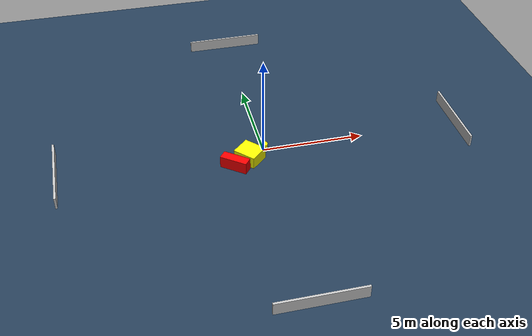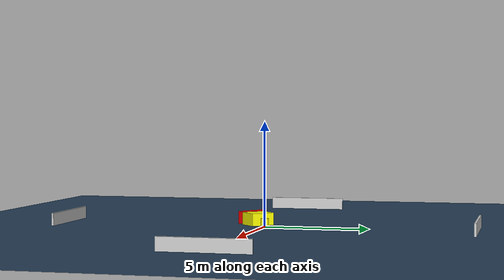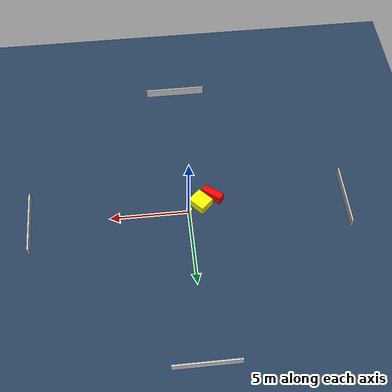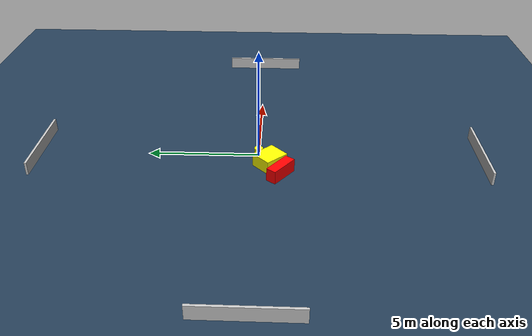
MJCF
<?xml version="1.0" ?>
<mujoco model="generated_environment">
  <option timestep="0.01" integrator="RK4" cone="elliptic"/>
  <default>
    <geom density="1"/>
  </default>
  <asset>
    <texture builtin="gradient" height="3072" name="skybox" rgb1="0.3 0.5 0.7" rgb2="0 0 0" type="skybox" width="512"/>
    <texture builtin="checker" height="300" name="groundplane" rgb1="0.2 0.3 0.4" rgb2="0.1 0.2 0.3" type="2d" width="300"/>
    <material name="groundplane" reflectance="0.2" texrepeat="5 5" texture="groundplane"/>
  </asset>
  <worldbody>
    <light dir="0 0 -1" directional="true" pos="0 0 1.5"/>
    <geom condim="3" friction="0.5 0.005 0.001" material="groundplane" name="floor" pos="0 0 0" size="0 0 0.05" type="plane"/>
    <body name="walls">
      <geom name="wall_1" condim="4" pos="-10.0 0.0 0.3" rgba="0.800000011920929 0.800000011920929 0.800000011920929 1.0" size="0.05 2.0 0.3" type="box"/>
      <geom name="wall_2" condim="4" pos="10.0 0.0 0.3" rgba="0.800000011920929 0.800000011920929 0.800000011920929 1.0" size="0.05 2.0 0.3" type="box"/>
      <geom name="wall_3" condim="4" pos="0.0 -10.0 0.3" rgba="0.800000011920929 0.800000011920929 0.800000011920929 1.0" size="2.0 0.05 0.3" type="box"/>
      <geom name="wall_4" condim="4" pos="0.0 10.0 0.3" rgba="0.800000011920929 0.800000011920929 0.800000011920929 1.0" size="2.0 0.05 0.3" type="box"/>
    </body>
    <body name="robot">
      <joint name="joint_x" type="slide" pos="0 0 0" axis="1 0 0"/>
      <joint name="joint_y" type="slide" pos="0 0 0" axis="0 1 0"/>
      <geom name="robot" type="cylinder" pos="0.0 0.0 0.2" size="0.2 0.2 0.0" mass="5.0" friction="1.0 0.005 0.0001" condim="4" rgba="1.0 1.0 0.0 1.0"/>
    </body>
    <body name="obstacle_1_movable">
      <geom name="obstacle_1_movable" condim="4" pos="-0.8024462115138812 -0.5239512663394121 0.3" euler="0 0 223.2083409920196" friction="0.0 0.005 0.001" rgba="1.0 1.0 0.0 1.0" size="0.5108448222975983 0.5755791931084839 0.3" type="box" mass="0.1"/>
      <joint type="free"/>
    </body>
    <body name="obstacle_2_static">
      <geom name="obstacle_2_static" condim="4" pos="-1.6184593744048204 -1.0055587016637764 0.3" euler="0 0 322.6494965054389" friction="0.0 0.005 0.001" rgba="1.0 0.0 0.0 1.0" size="0.6797220164916271 0.23727187475002048 0.3" type="box"/>
    </body>
  </worldbody>
  <actuator>
    <motor name="actuator_x" joint="joint_x" gear="1" ctrlrange="-1 1"/>
    <motor name="actuator_y" joint="joint_y" gear="1" ctrlrange="-1 1"/>
  </actuator>
</mujoco>
